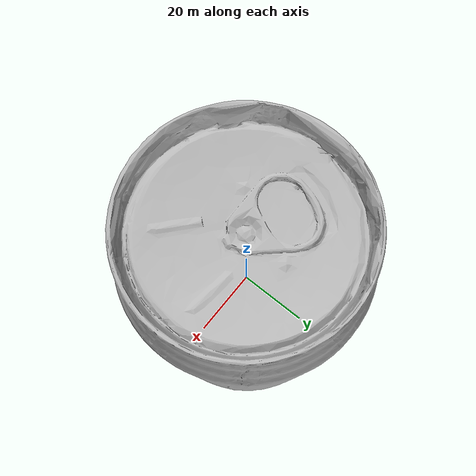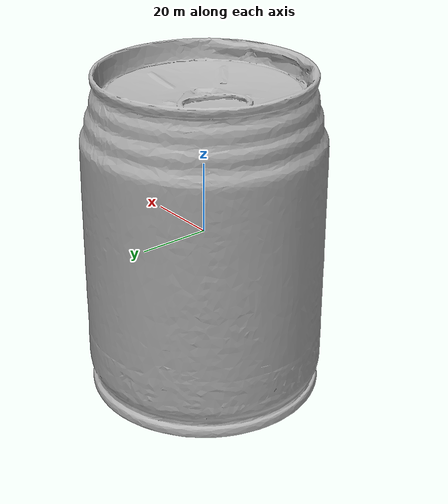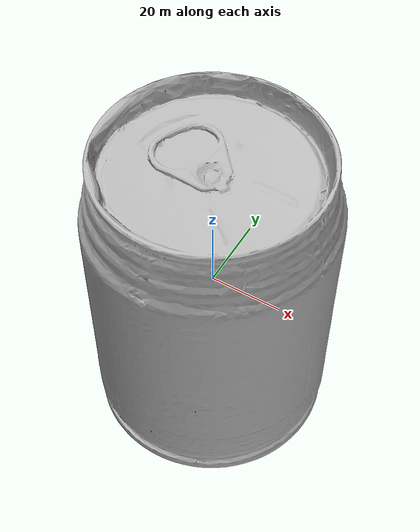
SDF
<sdf version="1.4">
 <world name="default">
  <light name="light1" type="point">
   <pose>0 0 1 0 0 0</pose>
   <diffuse>3 3 3 1</diffuse>
   <specular>3 3 3 1</specular>
  </light>
  <light name="light2" type="point">
   <pose>0 0.5 2 0 0 0</pose>
   <diffuse>1 1 1 1</diffuse>
   <specular>1 1 1 1</specular>
  </light>
  <light name="light3" type="point">
   <pose>0 0.5 2 0 0 0</pose>
   <diffuse>3 3 3 1</diffuse>
   <specular>3 3 3 1</specular>
  </light>
  <scene><ambient>0.7 0.7 0.7</ambient></scene>
  <model name="box2">
   <link name="link_box2">
    <collision name="default">
     <geometry>
      <mesh><uri>model://wooden_puzzle2/collision_meshes/collision.obj</uri><scale>1.0 1.0 1.0</scale></mesh>
     </geometry>
     <surface>
      <friction><ode><mu>0.5</mu><mu2>0.5</mu2></ode></friction>
      <contact><ode><max_vel>0</max_vel><min_depth>0.0001</min_depth><kp>1e8</kp></ode></contact>
     </surface>
    </collision>
    <visual name="default">
     <geometry>
      <mesh><uri>model://wooden_puzzle2/visual_meshes/visual.dae</uri><scale>1.0 1.0 1.0</scale></mesh>
     </geometry>
    </visual>
    <inertial>
     <mass>0.03464552015066147</mass>
     <pose>2.7402536943554878e-05 4.997663199901581e-05 6.587122334167361e-05 -0.1920274284601778 0.6112817660648215 -0.6338676817937987</pose>
     <inertia>
      <ixx>6.440233e-06</ixx>
      <iyy>6.6177017e-06</iyy>
      <izz>6.52356e-06</izz>
      <ixy>0</ixy>
      <ixz>0</ixz>
      <iyz>0</iyz>
     </inertia>
    </inertial>
   </link>
   <pose>0.03376372531056404 0.17234012484550476 0.01691773533821106 0.02084827500263225 0.0007214570896199209 0.4757468510223226</pose>
  </model>
  <model name="box3">
   <link name="link_box3">
    <collision name="default">
     <geometry>
      <mesh><uri>model://wooden_puzzle1/collision_meshes/collision.obj</uri><scale>1.0 1.0 1.0</scale></mesh>
     </geometry>
     <surface>
      <friction><ode><mu>0.5</mu><mu2>0.5</mu2></ode></friction>
      <contact><ode><max_vel>0</max_vel><min_depth>0.0001</min_depth><kp>1e8</kp></ode></contact>
     </surface>
    </collision>
    <visual name="default">
     <geometry>
      <mesh><uri>model://wooden_puzzle1/visual_meshes/visual.dae</uri><scale>1.0 1.0 1.0</scale></mesh>
     </geometry>
    </visual>
    <inertial>
     <mass>0.03424873203039169</mass>
     <pose>-0.0001735068071866408 7.97226166469045e-05 -9.191554272547364e-05 -0.07784599296854997 -0.2636133645981781 -0.5528677830585703</pose>
     <inertia>
      <ixx>6.4618e-06</ixx>
      <iyy>6.3374077e-06</iyy>
      <izz>6.413012e-06</izz>
      <ixy>0</ixy>
      <ixz>0</ixz>
      <iyz>0</iyz>
     </inertia>
    </inertial>
   </link>
   <pose>0.16241341829299927 0.24507993459701538 0.016802024096250534 0.010512069060648386 -0.00945345218456589 2.4701798371089696</pose>
  </model>
  <model name="can1">
   <link name="link_can1">
    <collision name="default">
     <geometry>
      <mesh><uri>model://pepsi/collision_meshes/collision.obj</uri><scale>1.0 1.0 1.0</scale></mesh>
     </geometry>
     <surface>
      <friction><ode><mu>0.5</mu><mu2>0.5</mu2></ode></friction>
      <contact><ode><max_vel>0</max_vel><min_depth>0.0001</min_depth><kp>1e8</kp></ode></contact>
     </surface>
    </collision>
    <visual name="default">
     <geometry><mesh><uri>model://pepsi/visual_meshes/visual.dae</uri><scale>1.0 1.0 1.0</scale></mesh></geometry>
    </visual>
    <inertial>
     <mass>0.3250696361064911</mass>
     <pose>-7.5590331107378e-05 2.99312814604491e-05 -0.0003384356386959553 -0.0010678660158137958 -0.0021735266966629516 0.5674177426725915</pose>
     <inertia>
      <ixx>0.0006476009</ixx>
      <iyy>0.0006471292</iyy>
      <izz>0.00013783273</izz>
      <ixy>0</ixy>
      <ixz>0</ixz>
      <iyz>0</iyz>
     </inertia>
    </inertial>
   </link>
   <pose>-0.07048286497592926 -0.0017914199270308018 0.0744963213801384 -1.8024513473601012e-05 2.058932696892834e-06 -2.118026397314724</pose>
  </model>
  <model name="can2">
   <link name="link_can2">
    <collision name="default">
     <geometry>
      <mesh><uri>model://redbull/collision_meshes/collision.obj</uri><scale>1.0 1.0 1.0</scale></mesh>
     </geometry>
     <surface>
      <friction><ode><mu>0.5</mu><mu2>0.5</mu2></ode></friction>
      <contact><ode><max_vel>0</max_vel><min_depth>0.0001</min_depth><kp>1e8</kp></ode></contact>
     </surface>
    </collision>
    <visual name="default">
     <geometry>
      <mesh><uri>model://redbull/visual_meshes/visual.dae</uri><scale>1.0 1.0 1.0</scale></mesh>
     </geometry>
    </visual>
    <inertial>
     <mass>0.28235653042793274</mass>
     <pose>-2.2127058400656097e-05 -0.00012659600179176778 -0.0006860987632535398 0.0011377565977294822 -0.010800863454111471 0.5858141898730843</pose>
     <inertia>
      <ixx>0.0002654759</ixx>
      <iyy>0.0002657</iyy>
      <izz>0.00015754026</izz>
      <ixy>0</ixy>
      <ixz>0</ixz>
      <iyz>0</iyz>
     </inertia>
    </inertial>
   </link>
   <pose>0.015276601538062096 -0.3673064112663269 0.04637444019317627 -0.010974905138373285 0.00759885759761116 -1.5758305304403903</pose>
  </model>
  <physics type="ode">
   <max_contacts>50</max_contacts>
   <ode>
    <solver><type>quick</type><iters>75</iters></solver>
    <constraints>
     <contact_max_correcting_vel>0</contact_max_correcting_vel>
     <contact_surface_layer>0</contact_surface_layer>
    </constraints>
   </ode>
  </physics>
 </world>
</sdf>
